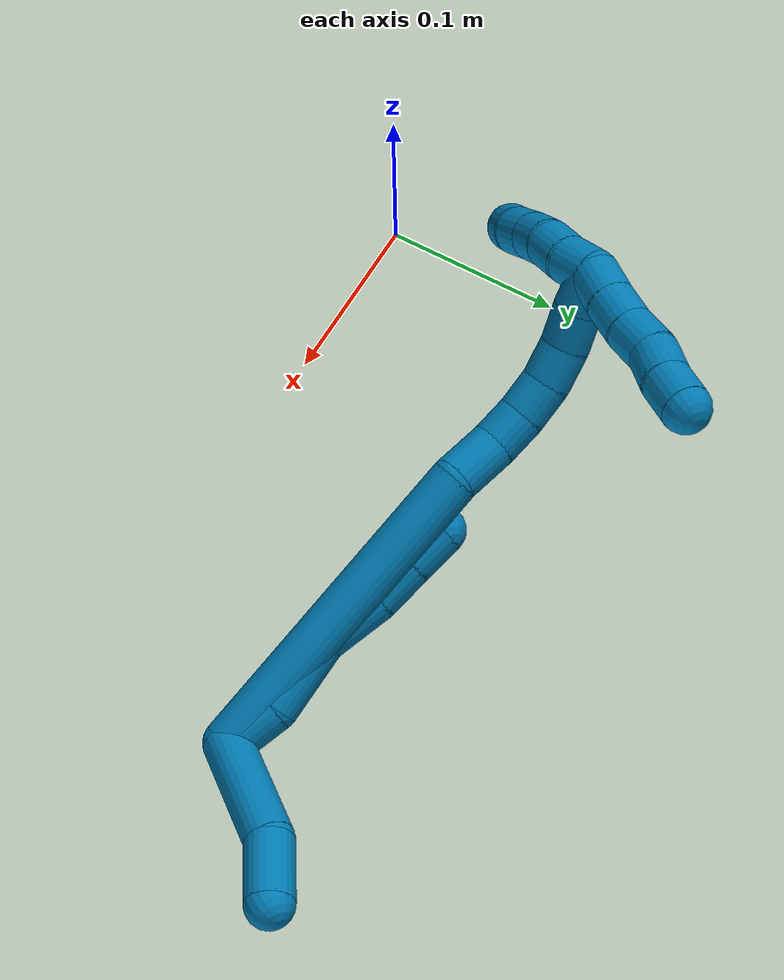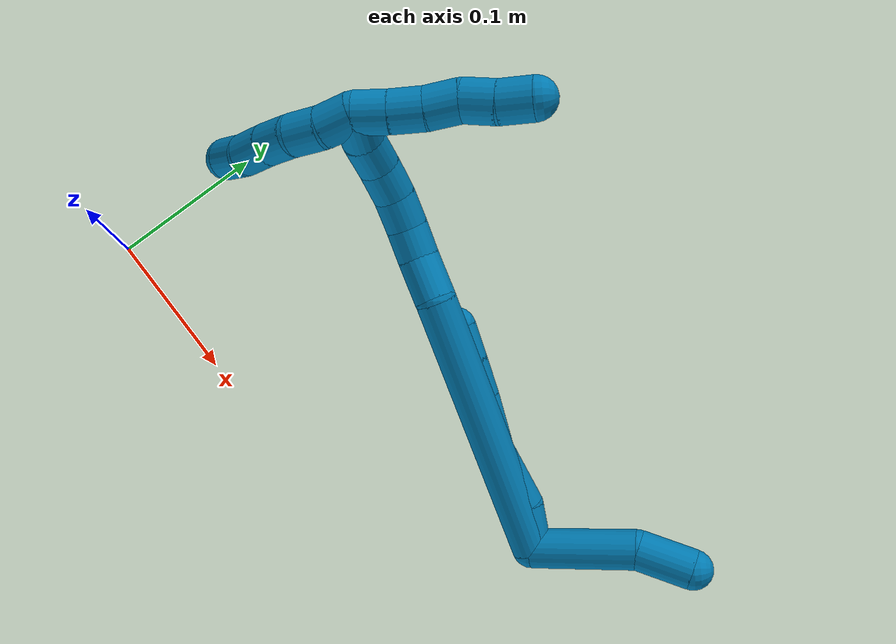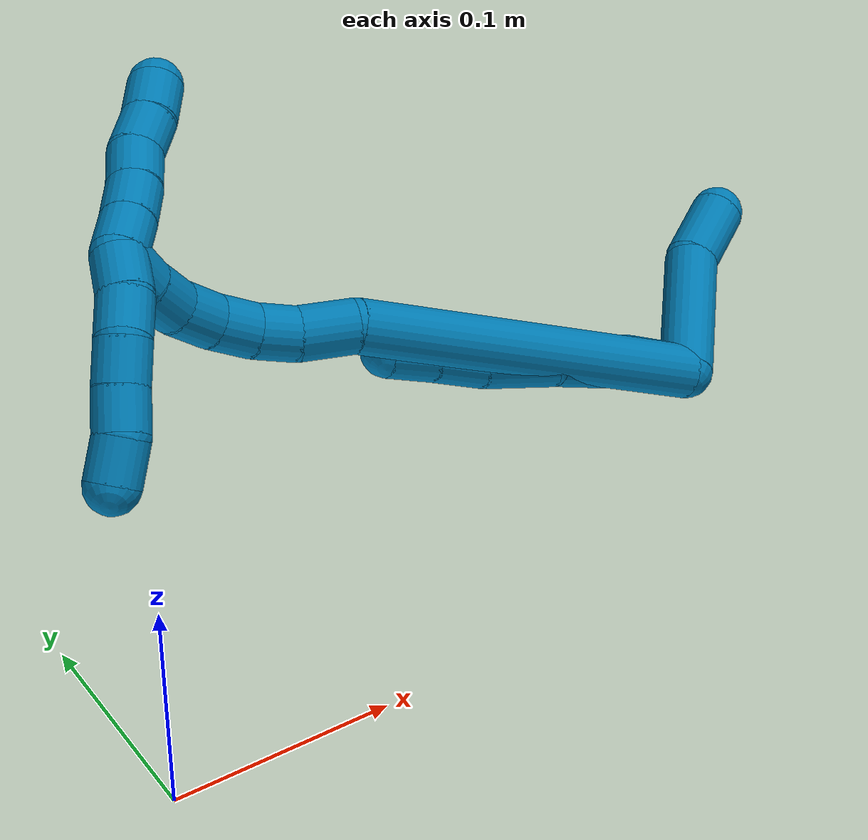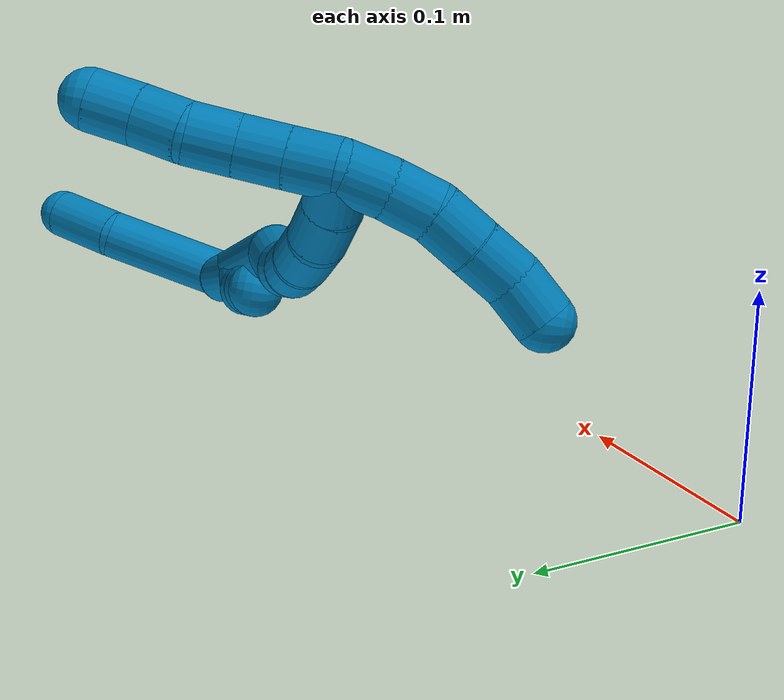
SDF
<sdf version="1.7">
 <world name="default">
  <model name="9">
   <static>0</static>
   <link name="9">
    <collision name="collision-cylinder-e_1_2_8">
     <pose>-0.014232 -0.000956 -0.001333 2.51964 -1.45607 -2.44947</pose>
     <geometry><cylinder><radius>0.0125</radius><length>0.028652</length></cylinder></geometry>
     <surface>
      <friction><ode><mu>1.16</mu><mu2>1.16</mu2><slip1>0</slip1><slip2>0</slip2></ode></friction>
      <contact><ode><kp>1e+06</kp><kd>1</kd><max_vel>0</max_vel><min_depth>0.001</min_depth></ode></contact>
     </surface>
    </collision>
    <visual name="visual-cylinder-e_1_2_8">
     <pose>-0.014232 -0.000956 -0.001333 2.51964 -1.45607 -2.44947</pose>
     <geometry><cylinder><radius>0.0125</radius><length>0.028652</length></cylinder></geometry>
     <material><ambient>0 0.490196 0.709804 1</ambient></material>
    </visual>
    <collision name="collision-cylinder-e_2_8_9">
     <pose>-0.046979 -0.005811 -0.010052 2.65584 -1.147 -2.40903</pose>
     <geometry><cylinder><radius>0.0125</radius><length>0.040624</length></cylinder></geometry>
     <surface>
      <friction><ode><mu>1.16</mu><mu2>1.16</mu2><slip1>0</slip1><slip2>0</slip2></ode></friction>
      <contact><ode><kp>1e+06</kp><kd>1</kd><max_vel>0</max_vel><min_depth>0.001</min_depth></ode></contact>
     </surface>
    </collision>
    <visual name="visual-cylinder-e_2_8_9">
     <pose>-0.046979 -0.005811 -0.010052 2.65584 -1.147 -2.40903</pose>
     <geometry><cylinder><radius>0.0125</radius><length>0.040624</length></cylinder></geometry>
     <material><ambient>0 0.490196 0.709804 1</ambient></material>
    </visual>
    <collision name="collision-cylinder-e_3_9_10">
     <pose>-0.081981 -0.008099 -0.020626 -2.67334 -1.35751 2.5666</pose>
     <geometry><cylinder><radius>0.0125</radius><length>0.033738</length></cylinder></geometry>
     <surface>
      <friction><ode><mu>1.16</mu><mu2>1.16</mu2><slip1>0</slip1><slip2>0</slip2></ode></friction>
      <contact><ode><kp>1e+06</kp><kd>1</kd><max_vel>0</max_vel><min_depth>0.001</min_depth></ode></contact>
     </surface>
    </collision>
    <visual name="visual-cylinder-e_3_9_10">
     <pose>-0.081981 -0.008099 -0.020626 -2.67334 -1.35751 2.5666</pose>
     <geometry><cylinder><radius>0.0125</radius><length>0.033738</length></cylinder></geometry>
     <material><ambient>0 0.490196 0.709804 1</ambient></material>
    </visual>
    <collision name="collision-cylinder-e_4_10_11">
     <pose>-0.110241 -0.008213 -0.026311 2.53719 -1.31834 -2.37649</pose>
     <geometry><cylinder><radius>0.0125</radius><length>0.024316</length></cylinder></geometry>
     <surface>
      <friction><ode><mu>1.16</mu><mu2>1.16</mu2><slip1>0</slip1><slip2>0</slip2></ode></friction>
      <contact><ode><kp>1e+06</kp><kd>1</kd><max_vel>0</max_vel><min_depth>0.001</min_depth></ode></contact>
     </surface>
    </collision>
    <visual name="visual-cylinder-e_4_10_11">
     <pose>-0.110241 -0.008213 -0.026311 2.53719 -1.31834 -2.37649</pose>
     <geometry><cylinder><radius>0.0125</radius><length>0.024316</length></cylinder></geometry>
     <material><ambient>0 0.490196 0.709804 1</ambient></material>
    </visual>
    <collision name="collision-cylinder-e_5_11_6">
     <pose>-0.133002 -0.011155 -0.031309 2.68873 -1.3231 -2.56622</pose>
     <geometry><cylinder><radius>0.0125</radius><length>0.022669</length></cylinder></geometry>
     <surface>
      <friction><ode><mu>1.16</mu><mu2>1.16</mu2><slip1>0</slip1><slip2>0</slip2></ode></friction>
      <contact><ode><kp>1e+06</kp><kd>1</kd><max_vel>0</max_vel><min_depth>0.001</min_depth></ode></contact>
     </surface>
    </collision>
    <visual name="visual-cylinder-e_5_11_6">
     <pose>-0.133002 -0.011155 -0.031309 2.68873 -1.3231 -2.56622</pose>
     <geometry><cylinder><radius>0.0125</radius><length>0.022669</length></cylinder></geometry>
     <material><ambient>0 0.490196 0.709804 1</ambient></material>
    </visual>
    <collision name="collision-cylinder-e_1_2_12">
     <pose>0.000981 -0.005298 0.032358 0.162274 0.029896 0.002431</pose>
     <geometry><cylinder><radius>0.0125</radius><length>0.065608</length></cylinder></geometry>
     <surface>
      <friction><ode><mu>1.16</mu><mu2>1.16</mu2><slip1>0</slip1><slip2>0</slip2></ode></friction>
      <contact><ode><kp>1e+06</kp><kd>1</kd><max_vel>0</max_vel><min_depth>0.001</min_depth></ode></contact>
     </surface>
    </collision>
    <visual name="visual-cylinder-e_1_2_12">
     <pose>0.000981 -0.005298 0.032358 0.162274 0.029896 0.002431</pose>
     <geometry><cylinder><radius>0.0125</radius><length>0.065608</length></cylinder></geometry>
     <material><ambient>0 0.490196 0.709804 1</ambient></material>
    </visual>
    <collision name="collision-cylinder-e_2_12_5">
     <pose>0.008306 -0.013019 0.080515 0.152275 0.377924 0.029176</pose>
     <geometry><cylinder><radius>0.0125</radius><length>0.034392</length></cylinder></geometry>
     <surface>
      <friction><ode><mu>1.16</mu><mu2>1.16</mu2><slip1>0</slip1><slip2>0</slip2></ode></friction>
      <contact><ode><kp>1e+06</kp><kd>1</kd><max_vel>0</max_vel><min_depth>0.001</min_depth></ode></contact>
     </surface>
    </collision>
    <visual name="visual-cylinder-e_2_12_5">
     <pose>0.008306 -0.013019 0.080515 0.152275 0.377924 0.029176</pose>
     <geometry><cylinder><radius>0.0125</radius><length>0.034392</length></cylinder></geometry>
     <material><ambient>0 0.490196 0.709804 1</ambient></material>
    </visual>
    <collision name="collision-cylinder-e_1_2_13">
     <pose>-0.081153 -0.016195 -0.02102 2.48511 -1.25478 -2.26343</pose>
     <geometry><cylinder><radius>0.0125</radius><length>0.170762</length></cylinder></geometry>
     <surface>
      <friction><ode><mu>1.16</mu><mu2>1.16</mu2><slip1>0</slip1><slip2>0</slip2></ode></friction>
      <contact><ode><kp>1e+06</kp><kd>1</kd><max_vel>0</max_vel><min_depth>0.001</min_depth></ode></contact>
     </surface>
    </collision>
    <visual name="visual-cylinder-e_1_2_13">
     <pose>-0.081153 -0.016195 -0.02102 2.48511 -1.25478 -2.26343</pose>
     <geometry><cylinder><radius>0.0125</radius><length>0.170762</length></cylinder></geometry>
     <material><ambient>0 0.490196 0.709804 1</ambient></material>
    </visual>
    <collision name="collision-cylinder-e_2_13_14">
     <pose>-0.175031 -0.03067 -0.046131 -2.74354 -1.23514 2.5882</pose>
     <geometry><cylinder><radius>0.0125</radius><length>0.026953</length></cylinder></geometry>
     <surface>
      <friction><ode><mu>1.16</mu><mu2>1.16</mu2><slip1>0</slip1><slip2>0</slip2></ode></friction>
      <contact><ode><kp>1e+06</kp><kd>1</kd><max_vel>0</max_vel><min_depth>0.001</min_depth></ode></contact>
     </surface>
    </collision>
    <visual name="visual-cylinder-e_2_13_14">
     <pose>-0.175031 -0.03067 -0.046131 -2.74354 -1.23514 2.5882</pose>
     <geometry><cylinder><radius>0.0125</radius><length>0.026953</length></cylinder></geometry>
     <material><ambient>0 0.490196 0.709804 1</ambient></material>
    </visual>
    <collision name="collision-cylinder-e_3_14_15">
     <pose>-0.197388 -0.030101 -0.05271 2.70801 -1.2936 -2.57402</pose>
     <geometry><cylinder><radius>0.0125</radius><length>0.020029</length></cylinder></geometry>
     <surface>
      <friction><ode><mu>1.16</mu><mu2>1.16</mu2><slip1>0</slip1><slip2>0</slip2></ode></friction>
      <contact><ode><kp>1e+06</kp><kd>1</kd><max_vel>0</max_vel><min_depth>0.001</min_depth></ode></contact>
     </surface>
    </collision>
    <visual name="visual-cylinder-e_3_14_15">
     <pose>-0.197388 -0.030101 -0.05271 2.70801 -1.2936 -2.57402</pose>
     <geometry><cylinder><radius>0.0125</radius><length>0.020029</length></cylinder></geometry>
     <material><ambient>0 0.490196 0.709804 1</ambient></material>
    </visual>
    <collision name="collision-cylinder-e_4_15_16">
     <pose>-0.216333 -0.03437 -0.05761 2.22931 -1.17039 -1.86684</pose>
     <geometry><cylinder><radius>0.0125</radius><length>0.020227</length></cylinder></geometry>
     <surface>
      <friction><ode><mu>1.16</mu><mu2>1.16</mu2><slip1>0</slip1><slip2>0</slip2></ode></friction>
      <contact><ode><kp>1e+06</kp><kd>1</kd><max_vel>0</max_vel><min_depth>0.001</min_depth></ode></contact>
     </surface>
    </collision>
    <visual name="visual-cylinder-e_4_15_16">
     <pose>-0.216333 -0.03437 -0.05761 2.22931 -1.17039 -1.86684</pose>
     <geometry><cylinder><radius>0.0125</radius><length>0.020227</length></cylinder></geometry>
     <material><ambient>0 0.490196 0.709804 1</ambient></material>
    </visual>
    <collision name="collision-cylinder-e_5_16_17">
     <pose>-0.23425 -0.042724 -0.062959 2.08192 -0.961527 -1.45512</pose>
     <geometry><cylinder><radius>0.0125</radius><length>0.020981</length></cylinder></geometry>
     <surface>
      <friction><ode><mu>1.16</mu><mu2>1.16</mu2><slip1>0</slip1><slip2>0</slip2></ode></friction>
      <contact><ode><kp>1e+06</kp><kd>1</kd><max_vel>0</max_vel><min_depth>0.001</min_depth></ode></contact>
     </surface>
    </collision>
    <visual name="visual-cylinder-e_5_16_17">
     <pose>-0.23425 -0.042724 -0.062959 2.08192 -0.961527 -1.45512</pose>
     <geometry><cylinder><radius>0.0125</radius><length>0.020981</length></cylinder></geometry>
     <material><ambient>0 0.490196 0.709804 1</ambient></material>
    </visual>
    <collision name="collision-cylinder-e_6_17_18">
     <pose>-0.24999 -0.055254 -0.068345 1.89479 -0.747848 -0.999059</pose>
     <geometry><cylinder><radius>0.0125</radius><length>0.020989</length></cylinder></geometry>
     <surface>
      <friction><ode><mu>1.16</mu><mu2>1.16</mu2><slip1>0</slip1><slip2>0</slip2></ode></friction>
      <contact><ode><kp>1e+06</kp><kd>1</kd><max_vel>0</max_vel><min_depth>0.001</min_depth></ode></contact>
     </surface>
    </collision>
    <visual name="visual-cylinder-e_6_17_18">
     <pose>-0.24999 -0.055254 -0.068345 1.89479 -0.747848 -0.999059</pose>
     <geometry><cylinder><radius>0.0125</radius><length>0.020989</length></cylinder></geometry>
     <material><ambient>0 0.490196 0.709804 1</ambient></material>
    </visual>
    <collision name="collision-cylinder-e_7_18_1">
     <pose>-0.263833 -0.069988 -0.071304 1.63917 -0.732365 -0.779282</pose>
     <geometry><cylinder><radius>0.0125</radius><length>0.020058</length></cylinder></geometry>
     <surface>
      <friction><ode><mu>1.16</mu><mu2>1.16</mu2><slip1>0</slip1><slip2>0</slip2></ode></friction>
      <contact><ode><kp>1e+06</kp><kd>1</kd><max_vel>0</max_vel><min_depth>0.001</min_depth></ode></contact>
     </surface>
    </collision>
    <visual name="visual-cylinder-e_7_18_1">
     <pose>-0.263833 -0.069988 -0.071304 1.63917 -0.732365 -0.779282</pose>
     <geometry><cylinder><radius>0.0125</radius><length>0.020058</length></cylinder></geometry>
     <material><ambient>0 0.490196 0.709804 1</ambient></material>
    </visual>
    <collision name="collision-cylinder-e_1_1_19">
     <pose>-0.269677 -0.077817 -0.061858 0.039048 0.086238 0.001685</pose>
     <geometry><cylinder><radius>0.0125</radius><length>0.02</length></cylinder></geometry>
     <surface>
      <friction><ode><mu>1.16</mu><mu2>1.16</mu2><slip1>0</slip1><slip2>0</slip2></ode></friction>
      <contact><ode><kp>1e+06</kp><kd>1</kd><max_vel>0</max_vel><min_depth>0.001</min_depth></ode></contact>
     </surface>
    </collision>
    <visual name="visual-cylinder-e_1_1_19">
     <pose>-0.269677 -0.077817 -0.061858 0.039048 0.086238 0.001685</pose>
     <geometry><cylinder><radius>0.0125</radius><length>0.02</length></cylinder></geometry>
     <material><ambient>0 0.490196 0.709804 1</ambient></material>
    </visual>
    <collision name="collision-cylinder-e_2_19_20">
     <pose>-0.268514 -0.078717 -0.04192 0.051124 0.030126 0.00077</pose>
     <geometry><cylinder><radius>0.0125</radius><length>0.02</length></cylinder></geometry>
     <surface>
      <friction><ode><mu>1.16</mu><mu2>1.16</mu2><slip1>0</slip1><slip2>0</slip2></ode></friction>
      <contact><ode><kp>1e+06</kp><kd>1</kd><max_vel>0</max_vel><min_depth>0.001</min_depth></ode></contact>
     </surface>
    </collision>
    <visual name="visual-cylinder-e_2_19_20">
     <pose>-0.268514 -0.078717 -0.04192 0.051124 0.030126 0.00077</pose>
     <geometry><cylinder><radius>0.0125</radius><length>0.02</length></cylinder></geometry>
     <material><ambient>0 0.490196 0.709804 1</ambient></material>
    </visual>
    <collision name="collision-cylinder-e_3_20_21">
     <pose>-0.269202 -0.079874 -0.022008 0.065015 -0.099029 -0.003223</pose>
     <geometry><cylinder><radius>0.0125</radius><length>0.02</length></cylinder></geometry>
     <surface>
      <friction><ode><mu>1.16</mu><mu2>1.16</mu2><slip1>0</slip1><slip2>0</slip2></ode></friction>
      <contact><ode><kp>1e+06</kp><kd>1</kd><max_vel>0</max_vel><min_depth>0.001</min_depth></ode></contact>
     </surface>
    </collision>
    <visual name="visual-cylinder-e_3_20_21">
     <pose>-0.269202 -0.079874 -0.022008 0.065015 -0.099029 -0.003223</pose>
     <geometry><cylinder><radius>0.0125</radius><length>0.02</length></cylinder></geometry>
     <material><ambient>0 0.490196 0.709804 1</ambient></material>
    </visual>
    <collision name="collision-cylinder-e_4_21_22">
     <pose>-0.268424 -0.082053 -0.002355 0.156343 0.177599 0.013948</pose>
     <geometry><cylinder><radius>0.0125</radius><length>0.02</length></cylinder></geometry>
     <surface>
      <friction><ode><mu>1.16</mu><mu2>1.16</mu2><slip1>0</slip1><slip2>0</slip2></ode></friction>
      <contact><ode><kp>1e+06</kp><kd>1</kd><max_vel>0</max_vel><min_depth>0.001</min_depth></ode></contact>
     </surface>
    </collision>
    <visual name="visual-cylinder-e_4_21_22">
     <pose>-0.268424 -0.082053 -0.002355 0.156343 0.177599 0.013948</pose>
     <geometry><cylinder><radius>0.0125</radius><length>0.02</length></cylinder></geometry>
     <material><ambient>0 0.490196 0.709804 1</ambient></material>
    </visual>
    <collision name="collision-cylinder-e_5_22_4">
     <pose>-0.266394 -0.08483 0.017286 0.124811 0.02634 0.001646</pose>
     <geometry><cylinder><radius>0.0125</radius><length>0.02</length></cylinder></geometry>
     <surface>
      <friction><ode><mu>1.16</mu><mu2>1.16</mu2><slip1>0</slip1><slip2>0</slip2></ode></friction>
      <contact><ode><kp>1e+06</kp><kd>1</kd><max_vel>0</max_vel><min_depth>0.001</min_depth></ode></contact>
     </surface>
    </collision>
    <visual name="visual-cylinder-e_5_22_4">
     <pose>-0.266394 -0.08483 0.017286 0.124811 0.02634 0.001646</pose>
     <geometry><cylinder><radius>0.0125</radius><length>0.02</length></cylinder></geometry>
     <material><ambient>0 0.490196 0.709804 1</ambient></material>
    </visual>
    <collision name="collision-cylinder-e_1_1_23">
     <pose>-0.267877 -0.075536 -0.081265 -2.944 0.269391 -1.8786</pose>
     <geometry><cylinder><radius>0.0125</radius><length>0.02</length></cylinder></geometry>
     <surface>
      <friction><ode><mu>1.16</mu><mu2>1.16</mu2><slip1>0</slip1><slip2>0</slip2></ode></friction>
      <contact><ode><kp>1e+06</kp><kd>1</kd><max_vel>0</max_vel><min_depth>0.001</min_depth></ode></contact>
     </surface>
    </collision>
    <visual name="visual-cylinder-e_1_1_23">
     <pose>-0.267877 -0.075536 -0.081265 -2.944 0.269391 -1.8786</pose>
     <geometry><cylinder><radius>0.0125</radius><length>0.02</length></cylinder></geometry>
     <material><ambient>0 0.490196 0.709804 1</ambient></material>
    </visual>
    <collision name="collision-cylinder-e_2_23_24">
     <pose>-0.264256 -0.070778 -0.10025 -2.84963 0.096091 -0.632132</pose>
     <geometry><cylinder><radius>0.0125</radius><length>0.02</length></cylinder></geometry>
     <surface>
      <friction><ode><mu>1.16</mu><mu2>1.16</mu2><slip1>0</slip1><slip2>0</slip2></ode></friction>
      <contact><ode><kp>1e+06</kp><kd>1</kd><max_vel>0</max_vel><min_depth>0.001</min_depth></ode></contact>
     </surface>
    </collision>
    <visual name="visual-cylinder-e_2_23_24">
     <pose>-0.264256 -0.070778 -0.10025 -2.84963 0.096091 -0.632132</pose>
     <geometry><cylinder><radius>0.0125</radius><length>0.02</length></cylinder></geometry>
     <material><ambient>0 0.490196 0.709804 1</ambient></material>
    </visual>
    <collision name="collision-cylinder-e_3_24_25">
     <pose>-0.262122 -0.062803 -0.118297 -2.60109 0.117732 -0.419224</pose>
     <geometry><cylinder><radius>0.0125</radius><length>0.02</length></cylinder></geometry>
     <surface>
      <friction><ode><mu>1.16</mu><mu2>1.16</mu2><slip1>0</slip1><slip2>0</slip2></ode></friction>
      <contact><ode><kp>1e+06</kp><kd>1</kd><max_vel>0</max_vel><min_depth>0.001</min_depth></ode></contact>
     </surface>
    </collision>
    <visual name="visual-cylinder-e_3_24_25">
     <pose>-0.262122 -0.062803 -0.118297 -2.60109 0.117732 -0.419224</pose>
     <geometry><cylinder><radius>0.0125</radius><length>0.02</length></cylinder></geometry>
     <material><ambient>0 0.490196 0.709804 1</ambient></material>
    </visual>
    <collision name="collision-cylinder-e_4_25_26">
     <pose>-0.259156 -0.052672 -0.135273 -2.606 0.180137 -0.635947</pose>
     <geometry><cylinder><radius>0.0125</radius><length>0.02</length></cylinder></geometry>
     <surface>
      <friction><ode><mu>1.16</mu><mu2>1.16</mu2><slip1>0</slip1><slip2>0</slip2></ode></friction>
      <contact><ode><kp>1e+06</kp><kd>1</kd><max_vel>0</max_vel><min_depth>0.001</min_depth></ode></contact>
     </surface>
    </collision>
    <visual name="visual-cylinder-e_4_25_26">
     <pose>-0.259156 -0.052672 -0.135273 -2.606 0.180137 -0.635947</pose>
     <geometry><cylinder><radius>0.0125</radius><length>0.02</length></cylinder></geometry>
     <material><ambient>0 0.490196 0.709804 1</ambient></material>
    </visual>
    <collision name="collision-cylinder-e_5_26_3">
     <pose>-0.257488 -0.04106 -0.151252 -2.42183 -0.012456 0.033102</pose>
     <geometry><cylinder><radius>0.0125</radius><length>0.02</length></cylinder></geometry>
     <surface>
      <friction><ode><mu>1.16</mu><mu2>1.16</mu2><slip1>0</slip1><slip2>0</slip2></ode></friction>
      <contact><ode><kp>1e+06</kp><kd>1</kd><max_vel>0</max_vel><min_depth>0.001</min_depth></ode></contact>
     </surface>
    </collision>
    <visual name="visual-cylinder-e_5_26_3">
     <pose>-0.257488 -0.04106 -0.151252 -2.42183 -0.012456 0.033102</pose>
     <geometry><cylinder><radius>0.0125</radius><length>0.02</length></cylinder></geometry>
     <material><ambient>0 0.490196 0.709804 1</ambient></material>
    </visual>
    <collision name="collision-sphere-3">
     <pose>-0.257613 -0.034468 -0.158772 0 -0 0</pose>
     <geometry><sphere><radius>0.0125</radius></sphere></geometry>
     <surface>
      <friction><ode><mu>1.16</mu><mu2>1.16</mu2><slip1>0</slip1><slip2>0</slip2></ode></friction>
      <contact><ode><kp>1e+06</kp><kd>1</kd><max_vel>0</max_vel><min_depth>0.001</min_depth></ode></contact>
     </surface>
    </collision>
    <visual name="visual-sphere-3">
     <pose>-0.257613 -0.034468 -0.158772 0 -0 0</pose>
     <geometry><sphere><radius>0.0125</radius></sphere></geometry>
     <material><ambient>0 0.490196 0.709804 1</ambient></material>
    </visual>
    <collision name="collision-sphere-26">
     <pose>-0.257364 -0.047651 -0.143733 0 -0 0</pose>
     <geometry><sphere><radius>0.0125</radius></sphere></geometry>
     <surface>
      <friction><ode><mu>1.16</mu><mu2>1.16</mu2><slip1>0</slip1><slip2>0</slip2></ode></friction>
      <contact><ode><kp>1e+06</kp><kd>1</kd><max_vel>0</max_vel><min_depth>0.001</min_depth></ode></contact>
     </surface>
    </collision>
    <visual name="visual-sphere-26">
     <pose>-0.257364 -0.047651 -0.143733 0 -0 0</pose>
     <geometry><sphere><radius>0.0125</radius></sphere></geometry>
     <material><ambient>0 0.490196 0.709804 1</ambient></material>
    </visual>
    <collision name="collision-sphere-25">
     <pose>-0.260947 -0.057693 -0.126812 0 -0 0</pose>
     <geometry><sphere><radius>0.0125</radius></sphere></geometry>
     <surface>
      <friction><ode><mu>1.16</mu><mu2>1.16</mu2><slip1>0</slip1><slip2>0</slip2></ode></friction>
      <contact><ode><kp>1e+06</kp><kd>1</kd><max_vel>0</max_vel><min_depth>0.001</min_depth></ode></contact>
     </surface>
    </collision>
    <visual name="visual-sphere-25">
     <pose>-0.260947 -0.057693 -0.126812 0 -0 0</pose>
     <geometry><sphere><radius>0.0125</radius></sphere></geometry>
     <material><ambient>0 0.490196 0.709804 1</ambient></material>
    </visual>
    <collision name="collision-sphere-24">
     <pose>-0.263296 -0.067913 -0.109782 0 -0 0</pose>
     <geometry><sphere><radius>0.0125</radius></sphere></geometry>
     <surface>
      <friction><ode><mu>1.16</mu><mu2>1.16</mu2><slip1>0</slip1><slip2>0</slip2></ode></friction>
      <contact><ode><kp>1e+06</kp><kd>1</kd><max_vel>0</max_vel><min_depth>0.001</min_depth></ode></contact>
     </surface>
    </collision>
    <visual name="visual-sphere-24">
     <pose>-0.263296 -0.067913 -0.109782 0 -0 0</pose>
     <geometry><sphere><radius>0.0125</radius></sphere></geometry>
     <material><ambient>0 0.490196 0.709804 1</ambient></material>
    </visual>
    <collision name="collision-sphere-23">
     <pose>-0.265215 -0.073643 -0.090717 0 -0 0</pose>
     <geometry><sphere><radius>0.0125</radius></sphere></geometry>
     <surface>
      <friction><ode><mu>1.16</mu><mu2>1.16</mu2><slip1>0</slip1><slip2>0</slip2></ode></friction>
      <contact><ode><kp>1e+06</kp><kd>1</kd><max_vel>0</max_vel><min_depth>0.001</min_depth></ode></contact>
     </surface>
    </collision>
    <visual name="visual-sphere-23">
     <pose>-0.265215 -0.073643 -0.090717 0 -0 0</pose>
     <geometry><sphere><radius>0.0125</radius></sphere></geometry>
     <material><ambient>0 0.490196 0.709804 1</ambient></material>
    </visual>
    <collision name="collision-sphere-4">
     <pose>-0.26613 -0.086074 0.027205 0 -0 0</pose>
     <geometry><sphere><radius>0.0125</radius></sphere></geometry>
     <surface>
      <friction><ode><mu>1.16</mu><mu2>1.16</mu2><slip1>0</slip1><slip2>0</slip2></ode></friction>
      <contact><ode><kp>1e+06</kp><kd>1</kd><max_vel>0</max_vel><min_depth>0.001</min_depth></ode></contact>
     </surface>
    </collision>
    <visual name="visual-sphere-4">
     <pose>-0.26613 -0.086074 0.027205 0 -0 0</pose>
     <geometry><sphere><radius>0.0125</radius></sphere></geometry>
     <material><ambient>0 0.490196 0.709804 1</ambient></material>
    </visual>
    <collision name="collision-sphere-22">
     <pose>-0.266657 -0.083586 0.007367 0 -0 0</pose>
     <geometry><sphere><radius>0.0125</radius></sphere></geometry>
     <surface>
      <friction><ode><mu>1.16</mu><mu2>1.16</mu2><slip1>0</slip1><slip2>0</slip2></ode></friction>
      <contact><ode><kp>1e+06</kp><kd>1</kd><max_vel>0</max_vel><min_depth>0.001</min_depth></ode></contact>
     </surface>
    </collision>
    <visual name="visual-sphere-22">
     <pose>-0.266657 -0.083586 0.007367 0 -0 0</pose>
     <geometry><sphere><radius>0.0125</radius></sphere></geometry>
     <material><ambient>0 0.490196 0.709804 1</ambient></material>
    </visual>
    <collision name="collision-sphere-21">
     <pose>-0.27019 -0.08052 -0.012078 0 -0 0</pose>
     <geometry><sphere><radius>0.0125</radius></sphere></geometry>
     <surface>
      <friction><ode><mu>1.16</mu><mu2>1.16</mu2><slip1>0</slip1><slip2>0</slip2></ode></friction>
      <contact><ode><kp>1e+06</kp><kd>1</kd><max_vel>0</max_vel><min_depth>0.001</min_depth></ode></contact>
     </surface>
    </collision>
    <visual name="visual-sphere-21">
     <pose>-0.27019 -0.08052 -0.012078 0 -0 0</pose>
     <geometry><sphere><radius>0.0125</radius></sphere></geometry>
     <material><ambient>0 0.490196 0.709804 1</ambient></material>
    </visual>
    <collision name="collision-sphere-20">
     <pose>-0.268213 -0.079227 -0.031938 0 -0 0</pose>
     <geometry><sphere><radius>0.0125</radius></sphere></geometry>
     <surface>
      <friction><ode><mu>1.16</mu><mu2>1.16</mu2><slip1>0</slip1><slip2>0</slip2></ode></friction>
      <contact><ode><kp>1e+06</kp><kd>1</kd><max_vel>0</max_vel><min_depth>0.001</min_depth></ode></contact>
     </surface>
    </collision>
    <visual name="visual-sphere-20">
     <pose>-0.268213 -0.079227 -0.031938 0 -0 0</pose>
     <geometry><sphere><radius>0.0125</radius></sphere></geometry>
     <material><ambient>0 0.490196 0.709804 1</ambient></material>
    </visual>
    <collision name="collision-sphere-6">
     <pose>-0.143991 -0.012371 -0.033807 0 -0 0</pose>
     <geometry><sphere><radius>0.0125</radius></sphere></geometry>
     <surface>
      <friction><ode><mu>1.16</mu><mu2>1.16</mu2><slip1>0</slip1><slip2>0</slip2></ode></friction>
      <contact><ode><kp>1e+06</kp><kd>1</kd><max_vel>0</max_vel><min_depth>0.001</min_depth></ode></contact>
     </surface>
    </collision>
    <visual name="visual-sphere-6">
     <pose>-0.143991 -0.012371 -0.033807 0 -0 0</pose>
     <geometry><sphere><radius>0.0125</radius></sphere></geometry>
     <material><ambient>0 0.490196 0.709804 1</ambient></material>
    </visual>
    <collision name="collision-sphere-11">
     <pose>-0.122013 -0.009939 -0.02881 0 -0 0</pose>
     <geometry><sphere><radius>0.0125</radius></sphere></geometry>
     <surface>
      <friction><ode><mu>1.16</mu><mu2>1.16</mu2><slip1>0</slip1><slip2>0</slip2></ode></friction>
      <contact><ode><kp>1e+06</kp><kd>1</kd><max_vel>0</max_vel><min_depth>0.001</min_depth></ode></contact>
     </surface>
    </collision>
    <visual name="visual-sphere-11">
     <pose>-0.122013 -0.009939 -0.02881 0 -0 0</pose>
     <geometry><sphere><radius>0.0125</radius></sphere></geometry>
     <material><ambient>0 0.490196 0.709804 1</ambient></material>
    </visual>
    <collision name="collision-sphere-10">
     <pose>-0.098468 -0.006487 -0.023812 0 -0 0</pose>
     <geometry><sphere><radius>0.0125</radius></sphere></geometry>
     <surface>
      <friction><ode><mu>1.16</mu><mu2>1.16</mu2><slip1>0</slip1><slip2>0</slip2></ode></friction>
      <contact><ode><kp>1e+06</kp><kd>1</kd><max_vel>0</max_vel><min_depth>0.001</min_depth></ode></contact>
     </surface>
    </collision>
    <visual name="visual-sphere-10">
     <pose>-0.098468 -0.006487 -0.023812 0 -0 0</pose>
     <geometry><sphere><radius>0.0125</radius></sphere></geometry>
     <material><ambient>0 0.490196 0.709804 1</ambient></material>
    </visual>
    <collision name="collision-sphere-9">
     <pose>-0.065494 -0.009711 -0.017439 0 -0 0</pose>
     <geometry><sphere><radius>0.0125</radius></sphere></geometry>
     <surface>
      <friction><ode><mu>1.16</mu><mu2>1.16</mu2><slip1>0</slip1><slip2>0</slip2></ode></friction>
      <contact><ode><kp>1e+06</kp><kd>1</kd><max_vel>0</max_vel><min_depth>0.001</min_depth></ode></contact>
     </surface>
    </collision>
    <visual name="visual-sphere-9">
     <pose>-0.065494 -0.009711 -0.017439 0 -0 0</pose>
     <geometry><sphere><radius>0.0125</radius></sphere></geometry>
     <material><ambient>0 0.490196 0.709804 1</ambient></material>
    </visual>
    <collision name="collision-sphere-2">
     <geometry><sphere><radius>0.0125</radius></sphere></geometry>
     <surface>
      <friction><ode><mu>1.16</mu><mu2>1.16</mu2><slip1>0</slip1><slip2>0</slip2></ode></friction>
      <contact><ode><kp>1e+06</kp><kd>1</kd><max_vel>0</max_vel><min_depth>0.001</min_depth></ode></contact>
     </surface>
    </collision>
    <visual name="visual-sphere-2">
     <geometry><sphere><radius>0.0125</radius></sphere></geometry>
     <material><ambient>0 0.490196 0.709804 1</ambient></material>
    </visual>
    <collision name="collision-sphere-19">
     <pose>-0.268816 -0.078206 -0.051903 0 -0 0</pose>
     <geometry><sphere><radius>0.0125</radius></sphere></geometry>
     <surface>
      <friction><ode><mu>1.16</mu><mu2>1.16</mu2><slip1>0</slip1><slip2>0</slip2></ode></friction>
      <contact><ode><kp>1e+06</kp><kd>1</kd><max_vel>0</max_vel><min_depth>0.001</min_depth></ode></contact>
     </surface>
    </collision>
    <visual name="visual-sphere-19">
     <pose>-0.268816 -0.078206 -0.051903 0 -0 0</pose>
     <geometry><sphere><radius>0.0125</radius></sphere></geometry>
     <material><ambient>0 0.490196 0.709804 1</ambient></material>
    </visual>
    <collision name="collision-sphere-8">
     <pose>-0.028464 -0.001911 -0.002666 0 -0 0</pose>
     <geometry><sphere><radius>0.0125</radius></sphere></geometry>
     <surface>
      <friction><ode><mu>1.16</mu><mu2>1.16</mu2><slip1>0</slip1><slip2>0</slip2></ode></friction>
      <contact><ode><kp>1e+06</kp><kd>1</kd><max_vel>0</max_vel><min_depth>0.001</min_depth></ode></contact>
     </surface>
    </collision>
    <visual name="visual-sphere-8">
     <pose>-0.028464 -0.001911 -0.002666 0 -0 0</pose>
     <geometry><sphere><radius>0.0125</radius></sphere></geometry>
     <material><ambient>0 0.490196 0.709804 1</ambient></material>
    </visual>
    <collision name="collision-sphere-12">
     <pose>0.001961 -0.010595 0.064717 0 -0 0</pose>
     <geometry><sphere><radius>0.0125</radius></sphere></geometry>
     <surface>
      <friction><ode><mu>1.16</mu><mu2>1.16</mu2><slip1>0</slip1><slip2>0</slip2></ode></friction>
      <contact><ode><kp>1e+06</kp><kd>1</kd><max_vel>0</max_vel><min_depth>0.001</min_depth></ode></contact>
     </surface>
    </collision>
    <visual name="visual-sphere-12">
     <pose>0.001961 -0.010595 0.064717 0 -0 0</pose>
     <geometry><sphere><radius>0.0125</radius></sphere></geometry>
     <material><ambient>0 0.490196 0.709804 1</ambient></material>
    </visual>
    <collision name="collision-sphere-5">
     <pose>0.014652 -0.015444 0.096312 0 -0 0</pose>
     <geometry><sphere><radius>0.0125</radius></sphere></geometry>
     <surface>
      <friction><ode><mu>1.16</mu><mu2>1.16</mu2><slip1>0</slip1><slip2>0</slip2></ode></friction>
      <contact><ode><kp>1e+06</kp><kd>1</kd><max_vel>0</max_vel><min_depth>0.001</min_depth></ode></contact>
     </surface>
    </collision>
    <visual name="visual-sphere-5">
     <pose>0.014652 -0.015444 0.096312 0 -0 0</pose>
     <geometry><sphere><radius>0.0125</radius></sphere></geometry>
     <material><ambient>0 0.490196 0.709804 1</ambient></material>
    </visual>
    <collision name="collision-sphere-13">
     <pose>-0.162306 -0.032391 -0.042039 0 -0 0</pose>
     <geometry><sphere><radius>0.0125</radius></sphere></geometry>
     <surface>
      <friction><ode><mu>1.16</mu><mu2>1.16</mu2><slip1>0</slip1><slip2>0</slip2></ode></friction>
      <contact><ode><kp>1e+06</kp><kd>1</kd><max_vel>0</max_vel><min_depth>0.001</min_depth></ode></contact>
     </surface>
    </collision>
    <visual name="visual-sphere-13">
     <pose>-0.162306 -0.032391 -0.042039 0 -0 0</pose>
     <geometry><sphere><radius>0.0125</radius></sphere></geometry>
     <material><ambient>0 0.490196 0.709804 1</ambient></material>
    </visual>
    <collision name="collision-sphere-14">
     <pose>-0.187755 -0.028949 -0.050223 0 -0 0</pose>
     <geometry><sphere><radius>0.0125</radius></sphere></geometry>
     <surface>
      <friction><ode><mu>1.16</mu><mu2>1.16</mu2><slip1>0</slip1><slip2>0</slip2></ode></friction>
      <contact><ode><kp>1e+06</kp><kd>1</kd><max_vel>0</max_vel><min_depth>0.001</min_depth></ode></contact>
     </surface>
    </collision>
    <visual name="visual-sphere-14">
     <pose>-0.187755 -0.028949 -0.050223 0 -0 0</pose>
     <geometry><sphere><radius>0.0125</radius></sphere></geometry>
     <material><ambient>0 0.490196 0.709804 1</ambient></material>
    </visual>
    <collision name="collision-sphere-15">
     <pose>-0.20702 -0.031252 -0.055197 0 -0 0</pose>
     <geometry><sphere><radius>0.0125</radius></sphere></geometry>
     <surface>
      <friction><ode><mu>1.16</mu><mu2>1.16</mu2><slip1>0</slip1><slip2>0</slip2></ode></friction>
      <contact><ode><kp>1e+06</kp><kd>1</kd><max_vel>0</max_vel><min_depth>0.001</min_depth></ode></contact>
     </surface>
    </collision>
    <visual name="visual-sphere-15">
     <pose>-0.20702 -0.031252 -0.055197 0 -0 0</pose>
     <geometry><sphere><radius>0.0125</radius></sphere></geometry>
     <material><ambient>0 0.490196 0.709804 1</ambient></material>
    </visual>
    <collision name="collision-sphere-16">
     <pose>-0.225647 -0.037488 -0.060022 0 -0 0</pose>
     <geometry><sphere><radius>0.0125</radius></sphere></geometry>
     <surface>
      <friction><ode><mu>1.16</mu><mu2>1.16</mu2><slip1>0</slip1><slip2>0</slip2></ode></friction>
      <contact><ode><kp>1e+06</kp><kd>1</kd><max_vel>0</max_vel><min_depth>0.001</min_depth></ode></contact>
     </surface>
    </collision>
    <visual name="visual-sphere-16">
     <pose>-0.225647 -0.037488 -0.060022 0 -0 0</pose>
     <geometry><sphere><radius>0.0125</radius></sphere></geometry>
     <material><ambient>0 0.490196 0.709804 1</ambient></material>
    </visual>
    <collision name="collision-sphere-17">
     <pose>-0.242853 -0.04796 -0.065895 0 -0 0</pose>
     <geometry><sphere><radius>0.0125</radius></sphere></geometry>
     <surface>
      <friction><ode><mu>1.16</mu><mu2>1.16</mu2><slip1>0</slip1><slip2>0</slip2></ode></friction>
      <contact><ode><kp>1e+06</kp><kd>1</kd><max_vel>0</max_vel><min_depth>0.001</min_depth></ode></contact>
     </surface>
    </collision>
    <visual name="visual-sphere-17">
     <pose>-0.242853 -0.04796 -0.065895 0 -0 0</pose>
     <geometry><sphere><radius>0.0125</radius></sphere></geometry>
     <material><ambient>0 0.490196 0.709804 1</ambient></material>
    </visual>
    <collision name="collision-sphere-18">
     <pose>-0.257127 -0.062548 -0.070794 0 -0 0</pose>
     <geometry><sphere><radius>0.0125</radius></sphere></geometry>
     <surface>
      <friction><ode><mu>1.16</mu><mu2>1.16</mu2><slip1>0</slip1><slip2>0</slip2></ode></friction>
      <contact><ode><kp>1e+06</kp><kd>1</kd><max_vel>0</max_vel><min_depth>0.001</min_depth></ode></contact>
     </surface>
    </collision>
    <visual name="visual-sphere-18">
     <pose>-0.257127 -0.062548 -0.070794 0 -0 0</pose>
     <geometry><sphere><radius>0.0125</radius></sphere></geometry>
     <material><ambient>0 0.490196 0.709804 1</ambient></material>
    </visual>
    <collision name="collision-sphere-1">
     <pose>-0.270538 -0.077428 -0.071813 0 -0 0</pose>
     <geometry><sphere><radius>0.0125</radius></sphere></geometry>
     <surface>
      <friction><ode><mu>1.16</mu><mu2>1.16</mu2><slip1>0</slip1><slip2>0</slip2></ode></friction>
      <contact><ode><kp>1e+06</kp><kd>1</kd><max_vel>0</max_vel><min_depth>0.001</min_depth></ode></contact>
     </surface>
    </collision>
    <visual name="visual-sphere-1">
     <pose>-0.270538 -0.077428 -0.071813 0 -0 0</pose>
     <geometry><sphere><radius>0.0125</radius></sphere></geometry>
     <material><ambient>0 0.490196 0.709804 1</ambient></material>
    </visual>
    <inertial>
     <pose>-0.141132 -0.032343 -0.030378 0 -0 0</pose>
     <mass>0.75</mass>
     <inertia>
      <ixx>-0.000184</ixx>
      <ixy>0</ixy>
      <ixz>0</ixz>
      <iyy>0.000346</iyy>
      <iyz>0</iyz>
      <izz>0.000511</izz>
     </inertia>
    </inertial>
   </link>
   <pose>0.320204 0.090661 0.026411 -1.41024 0.230708 -0.556384</pose>
  </model>
 </world>
</sdf>
